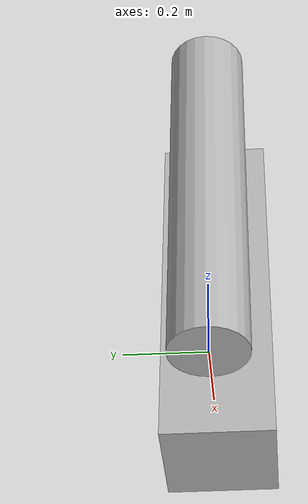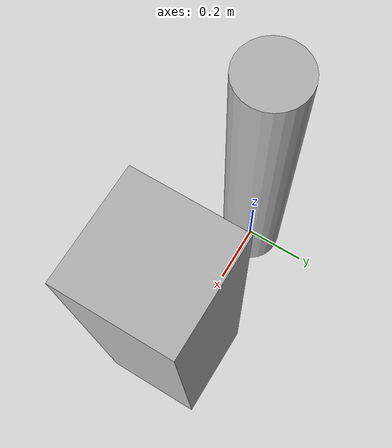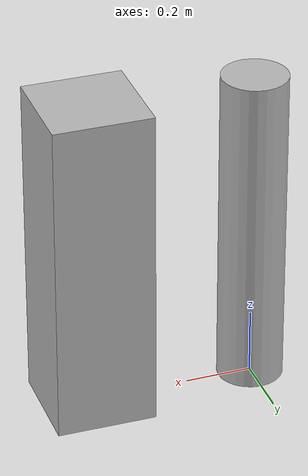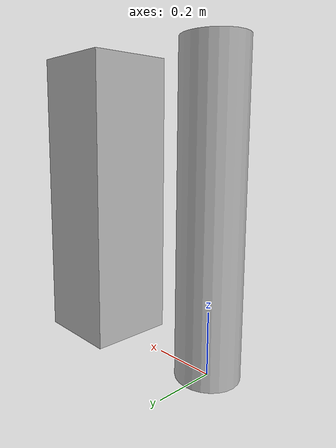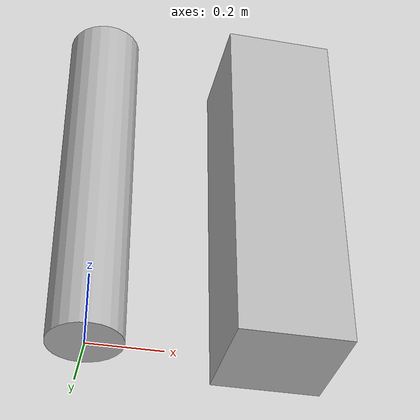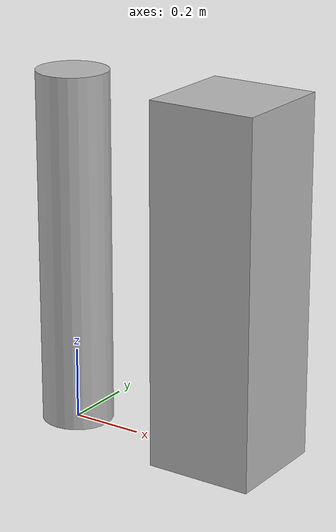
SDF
<?xml version='1.0'?>
<sdf version='1.6'>
  <model name="tables">
    <pose frame="world">0 0 0 0 0 0</pose>
    <link name="rob_table">
      <pose>0 0 0.5 0 0 0</pose>
      <inertial>
        <mass>50</mass>
        <inertia>
          <ixx>0.0</ixx>
          <ixy>0.0</ixy>
          <ixz>0.0</ixz>
          <iyy>0.0</iyy>
          <iyz>0.0</iyz>
          <izz>0.0</izz>
        </inertia>
      </inertial>
      <visual name="rob_table">
        <pose> 0.0 0.0 0.0 0.0 0.0 0.0</pose>
        <geometry>
          <cylinder>
            <radius>0.1</radius>
            <length>1</length>
          </cylinder>
        </geometry>
      </visual>
      <collision name="rob_table">
        <pose> 0.0 0.0 0.0 0.0 0.0 0.0</pose>
        <geometry>
          <cylinder>
            <radius>0.1</radius>
            <length>1</length>
          </cylinder>
        </geometry>
        <surface>
          <bounce>
            <restitution_coefficient> 0 </restitution_coefficient>
            <threshold> 10 </threshold>
          </bounce>
          <friction>
            <ode>
              <mu>0.1</mu>
            </ode>
          </friction>
        </surface>
      </collision>
    </link>

    <link name="work_table">
      <pose>0.5 0 0.5 0 0 0</pose>
      <inertial>
        <mass>500</mass>
        <inertia>
          <ixx>0.0</ixx>
          <ixy>0.0</ixy>
          <ixz>0.0</ixz>
          <iyy>0.0</iyy>
          <iyz>0.0</iyz>
          <izz>0.0</izz>
        </inertia>
      </inertial>
      <visual name="work_table">
        <pose> 0.0 0.0 0.0 0.0 0.0 0.0</pose>
        <geometry>
          <box>
            <size>0.3 0.3 1.0</size>
          </box>
        </geometry>
      </visual>
      <collision name="work_table">
        <pose> 0.0 0.0 0.0 0.0 0.0 0.0</pose>
        <geometry>
          <box>
            <size>0.3 0.3 1.0</size>
          </box>
        </geometry>
        <surface>
          <bounce>
            <restitution_coefficient> 0 </restitution_coefficient>
            <threshold> 10 </threshold>
          </bounce>
          <friction>
            <ode>
              <mu>0.1</mu>
            </ode>
          </friction>
        </surface>
      </collision>
    </link>

    <!-- dummy link world so the parts can be fixed to it. -->
    <link name="world"/>

    <joint name="rob_table_world" type="fixed">
      <pose> 0.0 0.0 0.0 0.0 0.0 0.0</pose>
      <parent>world</parent>
      <child>ros_table"</child>
    </joint>
    <joint name="work_table_world" type="fixed">
      <pose> 0.0 0.0 0.0 0.0 0.0 0.0</pose>
      <parent>world</parent>
      <child>work_table</child>
    </joint>
    <static>true</static>
    <allow_auto_disable>true</allow_auto_disable>
  </model>
</sdf>
